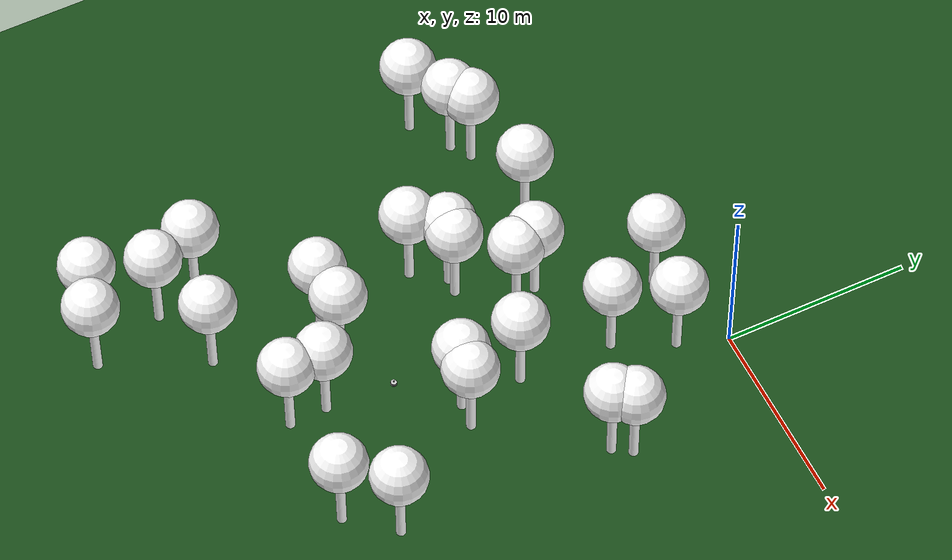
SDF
<sdf version="1.8">
 <world name="forest_world">
  <model name="tree_simple415">
   <static>1</static>
   <link name="link">
    <pose>0 0 0.1 0 -0 0</pose>
    <collision name="collision_trunk">
     <pose>0 0 2 0 -0 0</pose>
     <geometry><cylinder><radius>0.25</radius><length>4</length></cylinder></geometry>
    </collision>
    <collision name="collision_treetop">
     <pose>0 0 5.2 0 -0 0</pose>
     <geometry><sphere><radius>1.5</radius></sphere></geometry>
    </collision>
    <visual name="trunk">
     <pose>0 0 2 0 -0 0</pose>
     <geometry><cylinder><radius>0.25</radius><length>4</length></cylinder></geometry>
     <material>
      <ambient>0.5 0.5 0.5 1</ambient>
      <diffuse>1.0 1.0 1.0 1</diffuse>
      <specular>0.0 0.0 0.0 1</specular>
      <pbr>
       <metal>
        <albedo_map>../worlds/textures/tree_simple_trunk.jpg</albedo_map>
        <metalness>0.0</metalness>
        <roughness>0.8</roughness>
       </metal>
      </pbr>
     </material>
    </visual>
    <visual name="treetop">
     <pose>0 0 5.2 0 -0 0</pose>
     <geometry><sphere><radius>1.5</radius></sphere></geometry>
     <material>
      <ambient>0.5 0.5 0.5 1</ambient>
      <diffuse>1.0 1.0 1.0 1</diffuse>
      <specular>0.0 0.0 0.0 1</specular>
      <pbr>
       <metal>
        <albedo_map>../worlds/textures/tree_simple_treetop.jpg</albedo_map>
        <metalness>0.0</metalness>
        <roughness>0.9</roughness>
       </metal>
      </pbr>
     </material>
    </visual>
   </link>
   <pose>-11.6355979465 -5.8252534874 0 0 -0 0</pose>
  </model>
  <model name="tree_simple395">
   <static>1</static>
   <link name="link">
    <pose>0 0 0.1 0 -0 0</pose>
    <collision name="collision_trunk">
     <pose>0 0 2 0 -0 0</pose>
     <geometry><cylinder><radius>0.25</radius><length>4</length></cylinder></geometry>
    </collision>
    <collision name="collision_treetop">
     <pose>0 0 5.2 0 -0 0</pose>
     <geometry><sphere><radius>1.5</radius></sphere></geometry>
    </collision>
    <visual name="trunk">
     <pose>0 0 2 0 -0 0</pose>
     <geometry><cylinder><radius>0.25</radius><length>4</length></cylinder></geometry>
     <material>
      <ambient>0.5 0.5 0.5 1</ambient>
      <diffuse>1.0 1.0 1.0 1</diffuse>
      <specular>0.0 0.0 0.0 1</specular>
      <pbr>
       <metal>
        <albedo_map>../worlds/textures/tree_simple_trunk.jpg</albedo_map>
        <metalness>0.0</metalness>
        <roughness>0.8</roughness>
       </metal>
      </pbr>
     </material>
    </visual>
    <visual name="treetop">
     <pose>0 0 5.2 0 -0 0</pose>
     <geometry><sphere><radius>1.5</radius></sphere></geometry>
     <material>
      <ambient>0.5 0.5 0.5 1</ambient>
      <diffuse>1.0 1.0 1.0 1</diffuse>
      <specular>0.0 0.0 0.0 1</specular>
      <pbr>
       <metal>
        <albedo_map>../worlds/textures/tree_simple_treetop.jpg</albedo_map>
        <metalness>0.0</metalness>
        <roughness>0.9</roughness>
       </metal>
      </pbr>
     </material>
    </visual>
   </link>
   <pose>-14.8909068885 -23.0244241553 0 0 -0 0</pose>
  </model>
  <model name="tree_simple392">
   <static>1</static>
   <link name="link">
    <pose>0 0 0.1 0 -0 0</pose>
    <collision name="collision_trunk">
     <pose>0 0 2 0 -0 0</pose>
     <geometry><cylinder><radius>0.25</radius><length>4</length></cylinder></geometry>
    </collision>
    <collision name="collision_treetop">
     <pose>0 0 5.2 0 -0 0</pose>
     <geometry><sphere><radius>1.5</radius></sphere></geometry>
    </collision>
    <visual name="trunk">
     <pose>0 0 2 0 -0 0</pose>
     <geometry><cylinder><radius>0.25</radius><length>4</length></cylinder></geometry>
     <material>
      <ambient>0.5 0.5 0.5 1</ambient>
      <diffuse>1.0 1.0 1.0 1</diffuse>
      <specular>0.0 0.0 0.0 1</specular>
      <pbr>
       <metal>
        <albedo_map>../worlds/textures/tree_simple_trunk.jpg</albedo_map>
        <metalness>0.0</metalness>
        <roughness>0.8</roughness>
       </metal>
      </pbr>
     </material>
    </visual>
    <visual name="treetop">
     <pose>0 0 5.2 0 -0 0</pose>
     <geometry><sphere><radius>1.5</radius></sphere></geometry>
     <material>
      <ambient>0.5 0.5 0.5 1</ambient>
      <diffuse>1.0 1.0 1.0 1</diffuse>
      <specular>0.0 0.0 0.0 1</specular>
      <pbr>
       <metal>
        <albedo_map>../worlds/textures/tree_simple_treetop.jpg</albedo_map>
        <metalness>0.0</metalness>
        <roughness>0.9</roughness>
       </metal>
      </pbr>
     </material>
    </visual>
   </link>
   <pose>-2.49227665262 -10.6347787598 0 0 -0 0</pose>
  </model>
  <model name="tree_simple386">
   <static>1</static>
   <link name="link">
    <pose>0 0 0.1 0 -0 0</pose>
    <collision name="collision_trunk">
     <pose>0 0 2 0 -0 0</pose>
     <geometry><cylinder><radius>0.25</radius><length>4</length></cylinder></geometry>
    </collision>
    <collision name="collision_treetop">
     <pose>0 0 5.2 0 -0 0</pose>
     <geometry><sphere><radius>1.5</radius></sphere></geometry>
    </collision>
    <visual name="trunk">
     <pose>0 0 2 0 -0 0</pose>
     <geometry><cylinder><radius>0.25</radius><length>4</length></cylinder></geometry>
     <material>
      <ambient>0.5 0.5 0.5 1</ambient>
      <diffuse>1.0 1.0 1.0 1</diffuse>
      <specular>0.0 0.0 0.0 1</specular>
      <pbr>
       <metal>
        <albedo_map>../worlds/textures/tree_simple_trunk.jpg</albedo_map>
        <metalness>0.0</metalness>
        <roughness>0.8</roughness>
       </metal>
      </pbr>
     </material>
    </visual>
    <visual name="treetop">
     <pose>0 0 5.2 0 -0 0</pose>
     <geometry><sphere><radius>1.5</radius></sphere></geometry>
     <material>
      <ambient>0.5 0.5 0.5 1</ambient>
      <diffuse>1.0 1.0 1.0 1</diffuse>
      <specular>0.0 0.0 0.0 1</specular>
      <pbr>
       <metal>
        <albedo_map>../worlds/textures/tree_simple_treetop.jpg</albedo_map>
        <metalness>0.0</metalness>
        <roughness>0.9</roughness>
       </metal>
      </pbr>
     </material>
    </visual>
   </link>
   <pose>-19.2490777258 -8.77456979873 0 0 -0 0</pose>
  </model>
  <model name="tree_simple371">
   <static>1</static>
   <link name="link">
    <pose>0 0 0.1 0 -0 0</pose>
    <collision name="collision_trunk">
     <pose>0 0 2 0 -0 0</pose>
     <geometry><cylinder><radius>0.25</radius><length>4</length></cylinder></geometry>
    </collision>
    <collision name="collision_treetop">
     <pose>0 0 5.2 0 -0 0</pose>
     <geometry><sphere><radius>1.5</radius></sphere></geometry>
    </collision>
    <visual name="trunk">
     <pose>0 0 2 0 -0 0</pose>
     <geometry><cylinder><radius>0.25</radius><length>4</length></cylinder></geometry>
     <material>
      <ambient>0.5 0.5 0.5 1</ambient>
      <diffuse>1.0 1.0 1.0 1</diffuse>
      <specular>0.0 0.0 0.0 1</specular>
      <pbr>
       <metal>
        <albedo_map>../worlds/textures/tree_simple_trunk.jpg</albedo_map>
        <metalness>0.0</metalness>
        <roughness>0.8</roughness>
       </metal>
      </pbr>
     </material>
    </visual>
    <visual name="treetop">
     <pose>0 0 5.2 0 -0 0</pose>
     <geometry><sphere><radius>1.5</radius></sphere></geometry>
     <material>
      <ambient>0.5 0.5 0.5 1</ambient>
      <diffuse>1.0 1.0 1.0 1</diffuse>
      <specular>0.0 0.0 0.0 1</specular>
      <pbr>
       <metal>
        <albedo_map>../worlds/textures/tree_simple_treetop.jpg</albedo_map>
        <metalness>0.0</metalness>
        <roughness>0.9</roughness>
       </metal>
      </pbr>
     </material>
    </visual>
   </link>
   <pose>-15.0952400949 -28.608477139 0 0 -0 0</pose>
  </model>
  <model name="tree_simple364">
   <static>1</static>
   <link name="link">
    <pose>0 0 0.1 0 -0 0</pose>
    <collision name="collision_trunk">
     <pose>0 0 2 0 -0 0</pose>
     <geometry><cylinder><radius>0.25</radius><length>4</length></cylinder></geometry>
    </collision>
    <collision name="collision_treetop">
     <pose>0 0 5.2 0 -0 0</pose>
     <geometry><sphere><radius>1.5</radius></sphere></geometry>
    </collision>
    <visual name="trunk">
     <pose>0 0 2 0 -0 0</pose>
     <geometry><cylinder><radius>0.25</radius><length>4</length></cylinder></geometry>
     <material>
      <ambient>0.5 0.5 0.5 1</ambient>
      <diffuse>1.0 1.0 1.0 1</diffuse>
      <specular>0.0 0.0 0.0 1</specular>
      <pbr>
       <metal>
        <albedo_map>../worlds/textures/tree_simple_trunk.jpg</albedo_map>
        <metalness>0.0</metalness>
        <roughness>0.8</roughness>
       </metal>
      </pbr>
     </material>
    </visual>
    <visual name="treetop">
     <pose>0 0 5.2 0 -0 0</pose>
     <geometry><sphere><radius>1.5</radius></sphere></geometry>
     <material>
      <ambient>0.5 0.5 0.5 1</ambient>
      <diffuse>1.0 1.0 1.0 1</diffuse>
      <specular>0.0 0.0 0.0 1</specular>
      <pbr>
       <metal>
        <albedo_map>../worlds/textures/tree_simple_treetop.jpg</albedo_map>
        <metalness>0.0</metalness>
        <roughness>0.9</roughness>
       </metal>
      </pbr>
     </material>
    </visual>
   </link>
   <pose>-5.23612591395 -20.1562951187 0 0 -0 0</pose>
  </model>
  <model name="tree_simple347">
   <static>1</static>
   <link name="link">
    <pose>0 0 0.1 0 -0 0</pose>
    <collision name="collision_trunk">
     <pose>0 0 2 0 -0 0</pose>
     <geometry><cylinder><radius>0.25</radius><length>4</length></cylinder></geometry>
    </collision>
    <collision name="collision_treetop">
     <pose>0 0 5.2 0 -0 0</pose>
     <geometry><sphere><radius>1.5</radius></sphere></geometry>
    </collision>
    <visual name="trunk">
     <pose>0 0 2 0 -0 0</pose>
     <geometry><cylinder><radius>0.25</radius><length>4</length></cylinder></geometry>
     <material>
      <ambient>0.5 0.5 0.5 1</ambient>
      <diffuse>1.0 1.0 1.0 1</diffuse>
      <specular>0.0 0.0 0.0 1</specular>
      <pbr>
       <metal>
        <albedo_map>../worlds/textures/tree_simple_trunk.jpg</albedo_map>
        <metalness>0.0</metalness>
        <roughness>0.8</roughness>
       </metal>
      </pbr>
     </material>
    </visual>
    <visual name="treetop">
     <pose>0 0 5.2 0 -0 0</pose>
     <geometry><sphere><radius>1.5</radius></sphere></geometry>
     <material>
      <ambient>0.5 0.5 0.5 1</ambient>
      <diffuse>1.0 1.0 1.0 1</diffuse>
      <specular>0.0 0.0 0.0 1</specular>
      <pbr>
       <metal>
        <albedo_map>../worlds/textures/tree_simple_treetop.jpg</albedo_map>
        <metalness>0.0</metalness>
        <roughness>0.9</roughness>
       </metal>
      </pbr>
     </material>
    </visual>
   </link>
   <pose>-10.2981062424 -24.1175281228 0 0 -0 0</pose>
  </model>
  <model name="tree_simple322">
   <static>1</static>
   <link name="link">
    <pose>0 0 0.1 0 -0 0</pose>
    <collision name="collision_trunk">
     <pose>0 0 2 0 -0 0</pose>
     <geometry><cylinder><radius>0.25</radius><length>4</length></cylinder></geometry>
    </collision>
    <collision name="collision_treetop">
     <pose>0 0 5.2 0 -0 0</pose>
     <geometry><sphere><radius>1.5</radius></sphere></geometry>
    </collision>
    <visual name="trunk">
     <pose>0 0 2 0 -0 0</pose>
     <geometry><cylinder><radius>0.25</radius><length>4</length></cylinder></geometry>
     <material>
      <ambient>0.5 0.5 0.5 1</ambient>
      <diffuse>1.0 1.0 1.0 1</diffuse>
      <specular>0.0 0.0 0.0 1</specular>
      <pbr>
       <metal>
        <albedo_map>../worlds/textures/tree_simple_trunk.jpg</albedo_map>
        <metalness>0.0</metalness>
        <roughness>0.8</roughness>
       </metal>
      </pbr>
     </material>
    </visual>
    <visual name="treetop">
     <pose>0 0 5.2 0 -0 0</pose>
     <geometry><sphere><radius>1.5</radius></sphere></geometry>
     <material>
      <ambient>0.5 0.5 0.5 1</ambient>
      <diffuse>1.0 1.0 1.0 1</diffuse>
      <specular>0.0 0.0 0.0 1</specular>
      <pbr>
       <metal>
        <albedo_map>../worlds/textures/tree_simple_treetop.jpg</albedo_map>
        <metalness>0.0</metalness>
        <roughness>0.9</roughness>
       </metal>
      </pbr>
     </material>
    </visual>
   </link>
   <pose>-10.7837387112 -12.8598856653 0 0 -0 0</pose>
  </model>
  <model name="tree_simple317">
   <static>1</static>
   <link name="link">
    <pose>0 0 0.1 0 -0 0</pose>
    <collision name="collision_trunk">
     <pose>0 0 2 0 -0 0</pose>
     <geometry><cylinder><radius>0.25</radius><length>4</length></cylinder></geometry>
    </collision>
    <collision name="collision_treetop">
     <pose>0 0 5.2 0 -0 0</pose>
     <geometry><sphere><radius>1.5</radius></sphere></geometry>
    </collision>
    <visual name="trunk">
     <pose>0 0 2 0 -0 0</pose>
     <geometry><cylinder><radius>0.25</radius><length>4</length></cylinder></geometry>
     <material>
      <ambient>0.5 0.5 0.5 1</ambient>
      <diffuse>1.0 1.0 1.0 1</diffuse>
      <specular>0.0 0.0 0.0 1</specular>
      <pbr>
       <metal>
        <albedo_map>../worlds/textures/tree_simple_trunk.jpg</albedo_map>
        <metalness>0.0</metalness>
        <roughness>0.8</roughness>
       </metal>
      </pbr>
     </material>
    </visual>
    <visual name="treetop">
     <pose>0 0 5.2 0 -0 0</pose>
     <geometry><sphere><radius>1.5</radius></sphere></geometry>
     <material>
      <ambient>0.5 0.5 0.5 1</ambient>
      <diffuse>1.0 1.0 1.0 1</diffuse>
      <specular>0.0 0.0 0.0 1</specular>
      <pbr>
       <metal>
        <albedo_map>../worlds/textures/tree_simple_treetop.jpg</albedo_map>
        <metalness>0.0</metalness>
        <roughness>0.9</roughness>
       </metal>
      </pbr>
     </material>
    </visual>
   </link>
   <pose>1.01183279708 -22.2370296953 0 0 -0 0</pose>
  </model>
  <model name="tree_simple303">
   <static>1</static>
   <link name="link">
    <pose>0 0 0.1 0 -0 0</pose>
    <collision name="collision_trunk">
     <pose>0 0 2 0 -0 0</pose>
     <geometry><cylinder><radius>0.25</radius><length>4</length></cylinder></geometry>
    </collision>
    <collision name="collision_treetop">
     <pose>0 0 5.2 0 -0 0</pose>
     <geometry><sphere><radius>1.5</radius></sphere></geometry>
    </collision>
    <visual name="trunk">
     <pose>0 0 2 0 -0 0</pose>
     <geometry><cylinder><radius>0.25</radius><length>4</length></cylinder></geometry>
     <material>
      <ambient>0.5 0.5 0.5 1</ambient>
      <diffuse>1.0 1.0 1.0 1</diffuse>
      <specular>0.0 0.0 0.0 1</specular>
      <pbr>
       <metal>
        <albedo_map>../worlds/textures/tree_simple_trunk.jpg</albedo_map>
        <metalness>0.0</metalness>
        <roughness>0.8</roughness>
       </metal>
      </pbr>
     </material>
    </visual>
    <visual name="treetop">
     <pose>0 0 5.2 0 -0 0</pose>
     <geometry><sphere><radius>1.5</radius></sphere></geometry>
     <material>
      <ambient>0.5 0.5 0.5 1</ambient>
      <diffuse>1.0 1.0 1.0 1</diffuse>
      <specular>0.0 0.0 0.0 1</specular>
      <pbr>
       <metal>
        <albedo_map>../worlds/textures/tree_simple_treetop.jpg</albedo_map>
        <metalness>0.0</metalness>
        <roughness>0.9</roughness>
       </metal>
      </pbr>
     </material>
    </visual>
   </link>
   <pose>-9.56094886719 -11.2139048457 0 0 -0 0</pose>
  </model>
  <model name="tree_simple268">
   <static>1</static>
   <link name="link">
    <pose>0 0 0.1 0 -0 0</pose>
    <collision name="collision_trunk">
     <pose>0 0 2 0 -0 0</pose>
     <geometry><cylinder><radius>0.25</radius><length>4</length></cylinder></geometry>
    </collision>
    <collision name="collision_treetop">
     <pose>0 0 5.2 0 -0 0</pose>
     <geometry><sphere><radius>1.5</radius></sphere></geometry>
    </collision>
    <visual name="trunk">
     <pose>0 0 2 0 -0 0</pose>
     <geometry><cylinder><radius>0.25</radius><length>4</length></cylinder></geometry>
     <material>
      <ambient>0.5 0.5 0.5 1</ambient>
      <diffuse>1.0 1.0 1.0 1</diffuse>
      <specular>0.0 0.0 0.0 1</specular>
      <pbr>
       <metal>
        <albedo_map>../worlds/textures/tree_simple_trunk.jpg</albedo_map>
        <metalness>0.0</metalness>
        <roughness>0.8</roughness>
       </metal>
      </pbr>
     </material>
    </visual>
    <visual name="treetop">
     <pose>0 0 5.2 0 -0 0</pose>
     <geometry><sphere><radius>1.5</radius></sphere></geometry>
     <material>
      <ambient>0.5 0.5 0.5 1</ambient>
      <diffuse>1.0 1.0 1.0 1</diffuse>
      <specular>0.0 0.0 0.0 1</specular>
      <pbr>
       <metal>
        <albedo_map>../worlds/textures/tree_simple_treetop.jpg</albedo_map>
        <metalness>0.0</metalness>
        <roughness>0.9</roughness>
       </metal>
      </pbr>
     </material>
    </visual>
   </link>
   <pose>-9.9717965144 -18.2645258901 0 0 -0 0</pose>
  </model>
  <model name="tree_simple253">
   <static>1</static>
   <link name="link">
    <pose>0 0 0.1 0 -0 0</pose>
    <collision name="collision_trunk">
     <pose>0 0 2 0 -0 0</pose>
     <geometry><cylinder><radius>0.25</radius><length>4</length></cylinder></geometry>
    </collision>
    <collision name="collision_treetop">
     <pose>0 0 5.2 0 -0 0</pose>
     <geometry><sphere><radius>1.5</radius></sphere></geometry>
    </collision>
    <visual name="trunk">
     <pose>0 0 2 0 -0 0</pose>
     <geometry><cylinder><radius>0.25</radius><length>4</length></cylinder></geometry>
     <material>
      <ambient>0.5 0.5 0.5 1</ambient>
      <diffuse>1.0 1.0 1.0 1</diffuse>
      <specular>0.0 0.0 0.0 1</specular>
      <pbr>
       <metal>
        <albedo_map>../worlds/textures/tree_simple_trunk.jpg</albedo_map>
        <metalness>0.0</metalness>
        <roughness>0.8</roughness>
       </metal>
      </pbr>
     </material>
    </visual>
    <visual name="treetop">
     <pose>0 0 5.2 0 -0 0</pose>
     <geometry><sphere><radius>1.5</radius></sphere></geometry>
     <material>
      <ambient>0.5 0.5 0.5 1</ambient>
      <diffuse>1.0 1.0 1.0 1</diffuse>
      <specular>0.0 0.0 0.0 1</specular>
      <pbr>
       <metal>
        <albedo_map>../worlds/textures/tree_simple_treetop.jpg</albedo_map>
        <metalness>0.0</metalness>
        <roughness>0.9</roughness>
       </metal>
      </pbr>
     </material>
    </visual>
   </link>
   <pose>-6.71887912458 -8.7537434381 0 0 -0 0</pose>
  </model>
  <model name="tree_simple234">
   <static>1</static>
   <link name="link">
    <pose>0 0 0.1 0 -0 0</pose>
    <collision name="collision_trunk">
     <pose>0 0 2 0 -0 0</pose>
     <geometry><cylinder><radius>0.25</radius><length>4</length></cylinder></geometry>
    </collision>
    <collision name="collision_treetop">
     <pose>0 0 5.2 0 -0 0</pose>
     <geometry><sphere><radius>1.5</radius></sphere></geometry>
    </collision>
    <visual name="trunk">
     <pose>0 0 2 0 -0 0</pose>
     <geometry><cylinder><radius>0.25</radius><length>4</length></cylinder></geometry>
     <material>
      <ambient>0.5 0.5 0.5 1</ambient>
      <diffuse>1.0 1.0 1.0 1</diffuse>
      <specular>0.0 0.0 0.0 1</specular>
      <pbr>
       <metal>
        <albedo_map>../worlds/textures/tree_simple_trunk.jpg</albedo_map>
        <metalness>0.0</metalness>
        <roughness>0.8</roughness>
       </metal>
      </pbr>
     </material>
    </visual>
    <visual name="treetop">
     <pose>0 0 5.2 0 -0 0</pose>
     <geometry><sphere><radius>1.5</radius></sphere></geometry>
     <material>
      <ambient>0.5 0.5 0.5 1</ambient>
      <diffuse>1.0 1.0 1.0 1</diffuse>
      <specular>0.0 0.0 0.0 1</specular>
      <pbr>
       <metal>
        <albedo_map>../worlds/textures/tree_simple_treetop.jpg</albedo_map>
        <metalness>0.0</metalness>
        <roughness>0.9</roughness>
       </metal>
      </pbr>
     </material>
    </visual>
   </link>
   <pose>-7.13671903639 -7.51188908491 0 0 -0 0</pose>
  </model>
  <model name="tree_simple222">
   <static>1</static>
   <link name="link">
    <pose>0 0 0.1 0 -0 0</pose>
    <collision name="collision_trunk">
     <pose>0 0 2 0 -0 0</pose>
     <geometry><cylinder><radius>0.25</radius><length>4</length></cylinder></geometry>
    </collision>
    <collision name="collision_treetop">
     <pose>0 0 5.2 0 -0 0</pose>
     <geometry><sphere><radius>1.5</radius></sphere></geometry>
    </collision>
    <visual name="trunk">
     <pose>0 0 2 0 -0 0</pose>
     <geometry><cylinder><radius>0.25</radius><length>4</length></cylinder></geometry>
     <material>
      <ambient>0.5 0.5 0.5 1</ambient>
      <diffuse>1.0 1.0 1.0 1</diffuse>
      <specular>0.0 0.0 0.0 1</specular>
      <pbr>
       <metal>
        <albedo_map>../worlds/textures/tree_simple_trunk.jpg</albedo_map>
        <metalness>0.0</metalness>
        <roughness>0.8</roughness>
       </metal>
      </pbr>
     </material>
    </visual>
    <visual name="treetop">
     <pose>0 0 5.2 0 -0 0</pose>
     <geometry><sphere><radius>1.5</radius></sphere></geometry>
     <material>
      <ambient>0.5 0.5 0.5 1</ambient>
      <diffuse>1.0 1.0 1.0 1</diffuse>
      <specular>0.0 0.0 0.0 1</specular>
      <pbr>
       <metal>
        <albedo_map>../worlds/textures/tree_simple_treetop.jpg</albedo_map>
        <metalness>0.0</metalness>
        <roughness>0.9</roughness>
       </metal>
      </pbr>
     </material>
    </visual>
   </link>
   <pose>3.92504774623 -7.51224141252 0 0 -0 0</pose>
  </model>
  <model name="tree_simple201">
   <static>1</static>
   <link name="link">
    <pose>0 0 0.1 0 -0 0</pose>
    <collision name="collision_trunk">
     <pose>0 0 2 0 -0 0</pose>
     <geometry><cylinder><radius>0.25</radius><length>4</length></cylinder></geometry>
    </collision>
    <collision name="collision_treetop">
     <pose>0 0 5.2 0 -0 0</pose>
     <geometry><sphere><radius>1.5</radius></sphere></geometry>
    </collision>
    <visual name="trunk">
     <pose>0 0 2 0 -0 0</pose>
     <geometry><cylinder><radius>0.25</radius><length>4</length></cylinder></geometry>
     <material>
      <ambient>0.5 0.5 0.5 1</ambient>
      <diffuse>1.0 1.0 1.0 1</diffuse>
      <specular>0.0 0.0 0.0 1</specular>
      <pbr>
       <metal>
        <albedo_map>../worlds/textures/tree_simple_trunk.jpg</albedo_map>
        <metalness>0.0</metalness>
        <roughness>0.8</roughness>
       </metal>
      </pbr>
     </material>
    </visual>
    <visual name="treetop">
     <pose>0 0 5.2 0 -0 0</pose>
     <geometry><sphere><radius>1.5</radius></sphere></geometry>
     <material>
      <ambient>0.5 0.5 0.5 1</ambient>
      <diffuse>1.0 1.0 1.0 1</diffuse>
      <specular>0.0 0.0 0.0 1</specular>
      <pbr>
       <metal>
        <albedo_map>../worlds/textures/tree_simple_treetop.jpg</albedo_map>
        <metalness>0.0</metalness>
        <roughness>0.9</roughness>
       </metal>
      </pbr>
     </material>
    </visual>
   </link>
   <pose>-16.1062713361 -6.72563548396 0 0 -0 0</pose>
  </model>
  <model name="tree_simple195">
   <static>1</static>
   <link name="link">
    <pose>0 0 0.1 0 -0 0</pose>
    <collision name="collision_trunk">
     <pose>0 0 2 0 -0 0</pose>
     <geometry><cylinder><radius>0.25</radius><length>4</length></cylinder></geometry>
    </collision>
    <collision name="collision_treetop">
     <pose>0 0 5.2 0 -0 0</pose>
     <geometry><sphere><radius>1.5</radius></sphere></geometry>
    </collision>
    <visual name="trunk">
     <pose>0 0 2 0 -0 0</pose>
     <geometry><cylinder><radius>0.25</radius><length>4</length></cylinder></geometry>
     <material>
      <ambient>0.5 0.5 0.5 1</ambient>
      <diffuse>1.0 1.0 1.0 1</diffuse>
      <specular>0.0 0.0 0.0 1</specular>
      <pbr>
       <metal>
        <albedo_map>../worlds/textures/tree_simple_trunk.jpg</albedo_map>
        <metalness>0.0</metalness>
        <roughness>0.8</roughness>
       </metal>
      </pbr>
     </material>
    </visual>
    <visual name="treetop">
     <pose>0 0 5.2 0 -0 0</pose>
     <geometry><sphere><radius>1.5</radius></sphere></geometry>
     <material>
      <ambient>0.5 0.5 0.5 1</ambient>
      <diffuse>1.0 1.0 1.0 1</diffuse>
      <specular>0.0 0.0 0.0 1</specular>
      <pbr>
       <metal>
        <albedo_map>../worlds/textures/tree_simple_treetop.jpg</albedo_map>
        <metalness>0.0</metalness>
        <roughness>0.9</roughness>
       </metal>
      </pbr>
     </material>
    </visual>
   </link>
   <pose>2.97634626893 -19.931363898 0 0 -0 0</pose>
  </model>
  <model name="tree_simple155">
   <static>1</static>
   <link name="link">
    <pose>0 0 0.1 0 -0 0</pose>
    <collision name="collision_trunk">
     <pose>0 0 2 0 -0 0</pose>
     <geometry><cylinder><radius>0.25</radius><length>4</length></cylinder></geometry>
    </collision>
    <collision name="collision_treetop">
     <pose>0 0 5.2 0 -0 0</pose>
     <geometry><sphere><radius>1.5</radius></sphere></geometry>
    </collision>
    <visual name="trunk">
     <pose>0 0 2 0 -0 0</pose>
     <geometry><cylinder><radius>0.25</radius><length>4</length></cylinder></geometry>
     <material>
      <ambient>0.5 0.5 0.5 1</ambient>
      <diffuse>1.0 1.0 1.0 1</diffuse>
      <specular>0.0 0.0 0.0 1</specular>
      <pbr>
       <metal>
        <albedo_map>../worlds/textures/tree_simple_trunk.jpg</albedo_map>
        <metalness>0.0</metalness>
        <roughness>0.8</roughness>
       </metal>
      </pbr>
     </material>
    </visual>
    <visual name="treetop">
     <pose>0 0 5.2 0 -0 0</pose>
     <geometry><sphere><radius>1.5</radius></sphere></geometry>
     <material>
      <ambient>0.5 0.5 0.5 1</ambient>
      <diffuse>1.0 1.0 1.0 1</diffuse>
      <specular>0.0 0.0 0.0 1</specular>
      <pbr>
       <metal>
        <albedo_map>../worlds/textures/tree_simple_treetop.jpg</albedo_map>
        <metalness>0.0</metalness>
        <roughness>0.9</roughness>
       </metal>
      </pbr>
     </material>
    </visual>
   </link>
   <pose>-2.3717624472 -13.9733365428 0 0 -0 0</pose>
  </model>
  <model name="tree_simple154">
   <static>1</static>
   <link name="link">
    <pose>0 0 0.1 0 -0 0</pose>
    <collision name="collision_trunk">
     <pose>0 0 2 0 -0 0</pose>
     <geometry><cylinder><radius>0.25</radius><length>4</length></cylinder></geometry>
    </collision>
    <collision name="collision_treetop">
     <pose>0 0 5.2 0 -0 0</pose>
     <geometry><sphere><radius>1.5</radius></sphere></geometry>
    </collision>
    <visual name="trunk">
     <pose>0 0 2 0 -0 0</pose>
     <geometry><cylinder><radius>0.25</radius><length>4</length></cylinder></geometry>
     <material>
      <ambient>0.5 0.5 0.5 1</ambient>
      <diffuse>1.0 1.0 1.0 1</diffuse>
      <specular>0.0 0.0 0.0 1</specular>
      <pbr>
       <metal>
        <albedo_map>../worlds/textures/tree_simple_trunk.jpg</albedo_map>
        <metalness>0.0</metalness>
        <roughness>0.8</roughness>
       </metal>
      </pbr>
     </material>
    </visual>
    <visual name="treetop">
     <pose>0 0 5.2 0 -0 0</pose>
     <geometry><sphere><radius>1.5</radius></sphere></geometry>
     <material>
      <ambient>0.5 0.5 0.5 1</ambient>
      <diffuse>1.0 1.0 1.0 1</diffuse>
      <specular>0.0 0.0 0.0 1</specular>
      <pbr>
       <metal>
        <albedo_map>../worlds/textures/tree_simple_treetop.jpg</albedo_map>
        <metalness>0.0</metalness>
        <roughness>0.9</roughness>
       </metal>
      </pbr>
     </material>
    </visual>
   </link>
   <pose>3.295584565 -8.44091810905 0 0 -0 0</pose>
  </model>
  <model name="tree_simple152">
   <static>1</static>
   <link name="link">
    <pose>0 0 0.1 0 -0 0</pose>
    <collision name="collision_trunk">
     <pose>0 0 2 0 -0 0</pose>
     <geometry><cylinder><radius>0.25</radius><length>4</length></cylinder></geometry>
    </collision>
    <collision name="collision_treetop">
     <pose>0 0 5.2 0 -0 0</pose>
     <geometry><sphere><radius>1.5</radius></sphere></geometry>
    </collision>
    <visual name="trunk">
     <pose>0 0 2 0 -0 0</pose>
     <geometry><cylinder><radius>0.25</radius><length>4</length></cylinder></geometry>
     <material>
      <ambient>0.5 0.5 0.5 1</ambient>
      <diffuse>1.0 1.0 1.0 1</diffuse>
      <specular>0.0 0.0 0.0 1</specular>
      <pbr>
       <metal>
        <albedo_map>../worlds/textures/tree_simple_trunk.jpg</albedo_map>
        <metalness>0.0</metalness>
        <roughness>0.8</roughness>
       </metal>
      </pbr>
     </material>
    </visual>
    <visual name="treetop">
     <pose>0 0 5.2 0 -0 0</pose>
     <geometry><sphere><radius>1.5</radius></sphere></geometry>
     <material>
      <ambient>0.5 0.5 0.5 1</ambient>
      <diffuse>1.0 1.0 1.0 1</diffuse>
      <specular>0.0 0.0 0.0 1</specular>
      <pbr>
       <metal>
        <albedo_map>../worlds/textures/tree_simple_treetop.jpg</albedo_map>
        <metalness>0.0</metalness>
        <roughness>0.9</roughness>
       </metal>
      </pbr>
     </material>
    </visual>
   </link>
   <pose>-12.7268570034 -29.4125065477 0 0 -0 0</pose>
  </model>
  <model name="tree_simple140">
   <static>1</static>
   <link name="link">
    <pose>0 0 0.1 0 -0 0</pose>
    <collision name="collision_trunk">
     <pose>0 0 2 0 -0 0</pose>
     <geometry><cylinder><radius>0.25</radius><length>4</length></cylinder></geometry>
    </collision>
    <collision name="collision_treetop">
     <pose>0 0 5.2 0 -0 0</pose>
     <geometry><sphere><radius>1.5</radius></sphere></geometry>
    </collision>
    <visual name="trunk">
     <pose>0 0 2 0 -0 0</pose>
     <geometry><cylinder><radius>0.25</radius><length>4</length></cylinder></geometry>
     <material>
      <ambient>0.5 0.5 0.5 1</ambient>
      <diffuse>1.0 1.0 1.0 1</diffuse>
      <specular>0.0 0.0 0.0 1</specular>
      <pbr>
       <metal>
        <albedo_map>../worlds/textures/tree_simple_trunk.jpg</albedo_map>
        <metalness>0.0</metalness>
        <roughness>0.8</roughness>
       </metal>
      </pbr>
     </material>
    </visual>
    <visual name="treetop">
     <pose>0 0 5.2 0 -0 0</pose>
     <geometry><sphere><radius>1.5</radius></sphere></geometry>
     <material>
      <ambient>0.5 0.5 0.5 1</ambient>
      <diffuse>1.0 1.0 1.0 1</diffuse>
      <specular>0.0 0.0 0.0 1</specular>
      <pbr>
       <metal>
        <albedo_map>../worlds/textures/tree_simple_treetop.jpg</albedo_map>
        <metalness>0.0</metalness>
        <roughness>0.9</roughness>
       </metal>
      </pbr>
     </material>
    </visual>
   </link>
   <pose>-1.08104360216 -14.0922455385 0 0 -0 0</pose>
  </model>
  <model name="tree_simple138">
   <static>1</static>
   <link name="link">
    <pose>0 0 0.1 0 -0 0</pose>
    <collision name="collision_trunk">
     <pose>0 0 2 0 -0 0</pose>
     <geometry><cylinder><radius>0.25</radius><length>4</length></cylinder></geometry>
    </collision>
    <collision name="collision_treetop">
     <pose>0 0 5.2 0 -0 0</pose>
     <geometry><sphere><radius>1.5</radius></sphere></geometry>
    </collision>
    <visual name="trunk">
     <pose>0 0 2 0 -0 0</pose>
     <geometry><cylinder><radius>0.25</radius><length>4</length></cylinder></geometry>
     <material>
      <ambient>0.5 0.5 0.5 1</ambient>
      <diffuse>1.0 1.0 1.0 1</diffuse>
      <specular>0.0 0.0 0.0 1</specular>
      <pbr>
       <metal>
        <albedo_map>../worlds/textures/tree_simple_trunk.jpg</albedo_map>
        <metalness>0.0</metalness>
        <roughness>0.8</roughness>
       </metal>
      </pbr>
     </material>
    </visual>
    <visual name="treetop">
     <pose>0 0 5.2 0 -0 0</pose>
     <geometry><sphere><radius>1.5</radius></sphere></geometry>
     <material>
      <ambient>0.5 0.5 0.5 1</ambient>
      <diffuse>1.0 1.0 1.0 1</diffuse>
      <specular>0.0 0.0 0.0 1</specular>
      <pbr>
       <metal>
        <albedo_map>../worlds/textures/tree_simple_treetop.jpg</albedo_map>
        <metalness>0.0</metalness>
        <roughness>0.9</roughness>
       </metal>
      </pbr>
     </material>
    </visual>
   </link>
   <pose>-8.7404095495 -11.2488158501 0 0 -0 0</pose>
  </model>
  <model name="tree_simple106">
   <static>1</static>
   <link name="link">
    <pose>0 0 0.1 0 -0 0</pose>
    <collision name="collision_trunk">
     <pose>0 0 2 0 -0 0</pose>
     <geometry><cylinder><radius>0.25</radius><length>4</length></cylinder></geometry>
    </collision>
    <collision name="collision_treetop">
     <pose>0 0 5.2 0 -0 0</pose>
     <geometry><sphere><radius>1.5</radius></sphere></geometry>
    </collision>
    <visual name="trunk">
     <pose>0 0 2 0 -0 0</pose>
     <geometry><cylinder><radius>0.25</radius><length>4</length></cylinder></geometry>
     <material>
      <ambient>0.5 0.5 0.5 1</ambient>
      <diffuse>1.0 1.0 1.0 1</diffuse>
      <specular>0.0 0.0 0.0 1</specular>
      <pbr>
       <metal>
        <albedo_map>../worlds/textures/tree_simple_trunk.jpg</albedo_map>
        <metalness>0.0</metalness>
        <roughness>0.8</roughness>
       </metal>
      </pbr>
     </material>
    </visual>
    <visual name="treetop">
     <pose>0 0 5.2 0 -0 0</pose>
     <geometry><sphere><radius>1.5</radius></sphere></geometry>
     <material>
      <ambient>0.5 0.5 0.5 1</ambient>
      <diffuse>1.0 1.0 1.0 1</diffuse>
      <specular>0.0 0.0 0.0 1</specular>
      <pbr>
       <metal>
        <albedo_map>../worlds/textures/tree_simple_treetop.jpg</albedo_map>
        <metalness>0.0</metalness>
        <roughness>0.9</roughness>
       </metal>
      </pbr>
     </material>
    </visual>
   </link>
   <pose>-0.906213194622 -2.57618131058 0 0 -0 0</pose>
  </model>
  <model name="tree_simple89">
   <static>1</static>
   <link name="link">
    <pose>0 0 0.1 0 -0 0</pose>
    <collision name="collision_trunk">
     <pose>0 0 2 0 -0 0</pose>
     <geometry><cylinder><radius>0.25</radius><length>4</length></cylinder></geometry>
    </collision>
    <collision name="collision_treetop">
     <pose>0 0 5.2 0 -0 0</pose>
     <geometry><sphere><radius>1.5</radius></sphere></geometry>
    </collision>
    <visual name="trunk">
     <pose>0 0 2 0 -0 0</pose>
     <geometry><cylinder><radius>0.25</radius><length>4</length></cylinder></geometry>
     <material>
      <ambient>0.5 0.5 0.5 1</ambient>
      <diffuse>1.0 1.0 1.0 1</diffuse>
      <specular>0.0 0.0 0.0 1</specular>
      <pbr>
       <metal>
        <albedo_map>../worlds/textures/tree_simple_trunk.jpg</albedo_map>
        <metalness>0.0</metalness>
        <roughness>0.8</roughness>
       </metal>
      </pbr>
     </material>
    </visual>
    <visual name="treetop">
     <pose>0 0 5.2 0 -0 0</pose>
     <geometry><sphere><radius>1.5</radius></sphere></geometry>
     <material>
      <ambient>0.5 0.5 0.5 1</ambient>
      <diffuse>1.0 1.0 1.0 1</diffuse>
      <specular>0.0 0.0 0.0 1</specular>
      <pbr>
       <metal>
        <albedo_map>../worlds/textures/tree_simple_treetop.jpg</albedo_map>
        <metalness>0.0</metalness>
        <roughness>0.9</roughness>
       </metal>
      </pbr>
     </material>
    </visual>
   </link>
   <pose>-14.0445145291 -25.4354437198 0 0 -0 0</pose>
  </model>
  <model name="tree_simple64">
   <static>1</static>
   <link name="link">
    <pose>0 0 0.1 0 -0 0</pose>
    <collision name="collision_trunk">
     <pose>0 0 2 0 -0 0</pose>
     <geometry><cylinder><radius>0.25</radius><length>4</length></cylinder></geometry>
    </collision>
    <collision name="collision_treetop">
     <pose>0 0 5.2 0 -0 0</pose>
     <geometry><sphere><radius>1.5</radius></sphere></geometry>
    </collision>
    <visual name="trunk">
     <pose>0 0 2 0 -0 0</pose>
     <geometry><cylinder><radius>0.25</radius><length>4</length></cylinder></geometry>
     <material>
      <ambient>0.5 0.5 0.5 1</ambient>
      <diffuse>1.0 1.0 1.0 1</diffuse>
      <specular>0.0 0.0 0.0 1</specular>
      <pbr>
       <metal>
        <albedo_map>../worlds/textures/tree_simple_trunk.jpg</albedo_map>
        <metalness>0.0</metalness>
        <roughness>0.8</roughness>
       </metal>
      </pbr>
     </material>
    </visual>
    <visual name="treetop">
     <pose>0 0 5.2 0 -0 0</pose>
     <geometry><sphere><radius>1.5</radius></sphere></geometry>
     <material>
      <ambient>0.5 0.5 0.5 1</ambient>
      <diffuse>1.0 1.0 1.0 1</diffuse>
      <specular>0.0 0.0 0.0 1</specular>
      <pbr>
       <metal>
        <albedo_map>../worlds/textures/tree_simple_treetop.jpg</albedo_map>
        <metalness>0.0</metalness>
        <roughness>0.9</roughness>
       </metal>
      </pbr>
     </material>
    </visual>
   </link>
   <pose>-5.16461725533 -22.1747780475 0 0 -0 0</pose>
  </model>
  <model name="tree_simple60">
   <static>1</static>
   <link name="link">
    <pose>0 0 0.1 0 -0 0</pose>
    <collision name="collision_trunk">
     <pose>0 0 2 0 -0 0</pose>
     <geometry><cylinder><radius>0.25</radius><length>4</length></cylinder></geometry>
    </collision>
    <collision name="collision_treetop">
     <pose>0 0 5.2 0 -0 0</pose>
     <geometry><sphere><radius>1.5</radius></sphere></geometry>
    </collision>
    <visual name="trunk">
     <pose>0 0 2 0 -0 0</pose>
     <geometry><cylinder><radius>0.25</radius><length>4</length></cylinder></geometry>
     <material>
      <ambient>0.5 0.5 0.5 1</ambient>
      <diffuse>1.0 1.0 1.0 1</diffuse>
      <specular>0.0 0.0 0.0 1</specular>
      <pbr>
       <metal>
        <albedo_map>../worlds/textures/tree_simple_trunk.jpg</albedo_map>
        <metalness>0.0</metalness>
        <roughness>0.8</roughness>
       </metal>
      </pbr>
     </material>
    </visual>
    <visual name="treetop">
     <pose>0 0 5.2 0 -0 0</pose>
     <geometry><sphere><radius>1.5</radius></sphere></geometry>
     <material>
      <ambient>0.5 0.5 0.5 1</ambient>
      <diffuse>1.0 1.0 1.0 1</diffuse>
      <specular>0.0 0.0 0.0 1</specular>
      <pbr>
       <metal>
        <albedo_map>../worlds/textures/tree_simple_treetop.jpg</albedo_map>
        <metalness>0.0</metalness>
        <roughness>0.9</roughness>
       </metal>
      </pbr>
     </material>
    </visual>
   </link>
   <pose>-4.80911013023 -1.85604057601 0 0 -0 0</pose>
  </model>
  <model name="tree_simple37">
   <static>1</static>
   <link name="link">
    <pose>0 0 0.1 0 -0 0</pose>
    <collision name="collision_trunk">
     <pose>0 0 2 0 -0 0</pose>
     <geometry><cylinder><radius>0.25</radius><length>4</length></cylinder></geometry>
    </collision>
    <collision name="collision_treetop">
     <pose>0 0 5.2 0 -0 0</pose>
     <geometry><sphere><radius>1.5</radius></sphere></geometry>
    </collision>
    <visual name="trunk">
     <pose>0 0 2 0 -0 0</pose>
     <geometry><cylinder><radius>0.25</radius><length>4</length></cylinder></geometry>
     <material>
      <ambient>0.5 0.5 0.5 1</ambient>
      <diffuse>1.0 1.0 1.0 1</diffuse>
      <specular>0.0 0.0 0.0 1</specular>
      <pbr>
       <metal>
        <albedo_map>../worlds/textures/tree_simple_trunk.jpg</albedo_map>
        <metalness>0.0</metalness>
        <roughness>0.8</roughness>
       </metal>
      </pbr>
     </material>
    </visual>
    <visual name="treetop">
     <pose>0 0 5.2 0 -0 0</pose>
     <geometry><sphere><radius>1.5</radius></sphere></geometry>
     <material>
      <ambient>0.5 0.5 0.5 1</ambient>
      <diffuse>1.0 1.0 1.0 1</diffuse>
      <specular>0.0 0.0 0.0 1</specular>
      <pbr>
       <metal>
        <albedo_map>../worlds/textures/tree_simple_treetop.jpg</albedo_map>
        <metalness>0.0</metalness>
        <roughness>0.9</roughness>
       </metal>
      </pbr>
     </material>
    </visual>
   </link>
   <pose>-17.1200971999 -7.42377639458 0 0 -0 0</pose>
  </model>
  <model name="tree_simple18">
   <static>1</static>
   <link name="link">
    <pose>0 0 0.1 0 -0 0</pose>
    <collision name="collision_trunk">
     <pose>0 0 2 0 -0 0</pose>
     <geometry><cylinder><radius>0.25</radius><length>4</length></cylinder></geometry>
    </collision>
    <collision name="collision_treetop">
     <pose>0 0 5.2 0 -0 0</pose>
     <geometry><sphere><radius>1.5</radius></sphere></geometry>
    </collision>
    <visual name="trunk">
     <pose>0 0 2 0 -0 0</pose>
     <geometry><cylinder><radius>0.25</radius><length>4</length></cylinder></geometry>
     <material>
      <ambient>0.5 0.5 0.5 1</ambient>
      <diffuse>1.0 1.0 1.0 1</diffuse>
      <specular>0.0 0.0 0.0 1</specular>
      <pbr>
       <metal>
        <albedo_map>../worlds/textures/tree_simple_trunk.jpg</albedo_map>
        <metalness>0.0</metalness>
        <roughness>0.8</roughness>
       </metal>
      </pbr>
     </material>
    </visual>
    <visual name="treetop">
     <pose>0 0 5.2 0 -0 0</pose>
     <geometry><sphere><radius>1.5</radius></sphere></geometry>
     <material>
      <ambient>0.5 0.5 0.5 1</ambient>
      <diffuse>1.0 1.0 1.0 1</diffuse>
      <specular>0.0 0.0 0.0 1</specular>
      <pbr>
       <metal>
        <albedo_map>../worlds/textures/tree_simple_treetop.jpg</albedo_map>
        <metalness>0.0</metalness>
        <roughness>0.9</roughness>
       </metal>
      </pbr>
     </material>
    </visual>
   </link>
   <pose>-7.91294561281 -18.0894598626 0 0 -0 0</pose>
  </model>
  <model name="tree_simple2">
   <static>1</static>
   <link name="link">
    <pose>0 0 0.1 0 -0 0</pose>
    <collision name="collision_trunk">
     <pose>0 0 2 0 -0 0</pose>
     <geometry><cylinder><radius>0.25</radius><length>4</length></cylinder></geometry>
    </collision>
    <collision name="collision_treetop">
     <pose>0 0 5.2 0 -0 0</pose>
     <geometry><sphere><radius>1.5</radius></sphere></geometry>
    </collision>
    <visual name="trunk">
     <pose>0 0 2 0 -0 0</pose>
     <geometry><cylinder><radius>0.25</radius><length>4</length></cylinder></geometry>
     <material>
      <ambient>0.5 0.5 0.5 1</ambient>
      <diffuse>1.0 1.0 1.0 1</diffuse>
      <specular>0.0 0.0 0.0 1</specular>
      <pbr>
       <metal>
        <albedo_map>../worlds/textures/tree_simple_trunk.jpg</albedo_map>
        <metalness>0.0</metalness>
        <roughness>0.8</roughness>
       </metal>
      </pbr>
     </material>
    </visual>
    <visual name="treetop">
     <pose>0 0 5.2 0 -0 0</pose>
     <geometry><sphere><radius>1.5</radius></sphere></geometry>
     <material>
      <ambient>0.5 0.5 0.5 1</ambient>
      <diffuse>1.0 1.0 1.0 1</diffuse>
      <specular>0.0 0.0 0.0 1</specular>
      <pbr>
       <metal>
        <albedo_map>../worlds/textures/tree_simple_treetop.jpg</albedo_map>
        <metalness>0.0</metalness>
        <roughness>0.9</roughness>
       </metal>
      </pbr>
     </material>
    </visual>
   </link>
   <pose>-2.32374702534 -5.59991455471 0 0 -0 0</pose>
  </model>
  <model name="ground_plane">
   <static>true</static>
   <link name="link">
    <collision name="collision">
     <geometry><mesh><uri>../worlds/textures/grass_plane.dae</uri><scale>1 1 1</scale></mesh></geometry>
     <surface><friction><ode><mu>1</mu><mu2>1</mu2></ode></friction></surface>
    </collision>
    <visual name="snow">
     <cast_shadows>false</cast_shadows>
     <geometry><mesh><uri>../worlds/textures/grass_plane.dae</uri><scale>1 1 1</scale></mesh></geometry>
     <material>
      <ambient>0.05 0.2 0.05 1</ambient>
      <diffuse>0.1 0.3 0.1 1</diffuse>
      <specular>0.05 0.05 0.05 1</specular>
     </material>
    </visual>
   </link>
  </model>
  <model name="turtlebot4">
   <pose>-3.05 -17.37 3.5 0 0 0</pose>
   <static>false</static>
   <link name="base_link">
    <inertial>
     <mass>2.5</mass>
     <inertia>
      <ixx>0.019995</ixx>
      <ixy>0.0</ixy>
      <ixz>0.0</ixz>
      <iyy>0.019995</iyy>
      <iyz>0.0</iyz>
      <izz>0.03675</izz>
     </inertia>
    </inertial>
    <visual name="base_visual">
     <geometry><cylinder><radius>0.17</radius><length>0.12</length></cylinder></geometry>
     <material><ambient>0.1 0.1 0.1 1</ambient><diffuse>0.1 0.1 0.1 1</diffuse></material>
    </visual>
    <visual name="top_visual">
     <pose>0 0 0.08 0 0 0</pose>
     <geometry><cylinder><radius>0.15</radius><length>0.04</length></cylinder></geometry>
     <material><ambient>0.8 0.8 0.8 1</ambient><diffuse>0.8 0.8 0.8 1</diffuse></material>
    </visual>
    <collision name="base_collision">
     <geometry><cylinder><radius>0.17</radius><length>0.12</length></cylinder></geometry>
    </collision>
   </link>
   <link name="left_wheel">
    <pose>0 0.115 -0.032 -1.5707 0 0</pose>
    <inertial>
     <mass>0.1</mass>
     <inertia><ixx>0.001</ixx><ixy>0.0</ixy><ixz>0.0</ixz><iyy>0.001</iyy><iyz>0.0</iyz><izz>0.001</izz></inertia>
    </inertial>
    <visual name="visual">
     <geometry><cylinder><radius>0.035</radius><length>0.026</length></cylinder></geometry>
     <material><ambient>0.2 0.2 0.2 1</ambient><diffuse>0.2 0.2 0.2 1</diffuse></material>
    </visual>
    <collision name="collision">
     <geometry><cylinder><radius>0.035</radius><length>0.026</length></cylinder></geometry>
     <surface><friction><ode><mu>1.0</mu><mu2>1.0</mu2></ode></friction></surface>
    </collision>
   </link>
   <link name="right_wheel">
    <pose>0 -0.115 -0.032 -1.5707 0 0</pose>
    <inertial>
     <mass>0.1</mass>
     <inertia><ixx>0.001</ixx><ixy>0.0</ixy><ixz>0.0</ixz><iyy>0.001</iyy><iyz>0.0</iyz><izz>0.001</izz></inertia>
    </inertial>
    <visual name="visual">
     <geometry><cylinder><radius>0.035</radius><length>0.026</length></cylinder></geometry>
     <material><ambient>0.2 0.2 0.2 1</ambient><diffuse>0.2 0.2 0.2 1</diffuse></material>
    </visual>
    <collision name="collision">
     <geometry><cylinder><radius>0.035</radius><length>0.026</length></cylinder></geometry>
     <surface><friction><ode><mu>1.0</mu><mu2>1.0</mu2></ode></friction></surface>
    </collision>
   </link>
   <link name="caster_wheel">
    <pose>0.12 0 -0.055 0 0 0</pose>
    <inertial>
     <mass>0.05</mass>
     <inertia>
      <ixx>0.0001</ixx>
      <ixy>0.0</ixy>
      <ixz>0.0</ixz>
      <iyy>0.0001</iyy>
      <iyz>0.0</iyz>
      <izz>0.0001</izz>
     </inertia>
    </inertial>
    <visual name="visual">
     <geometry><sphere><radius>0.012</radius></sphere></geometry>
     <material><ambient>0.3 0.3 0.3 1</ambient><diffuse>0.3 0.3 0.3 1</diffuse></material>
    </visual>
    <collision name="collision">
     <geometry><sphere><radius>0.012</radius></sphere></geometry>
     <surface><friction><ode><mu>0.1</mu><mu2>0.1</mu2></ode></friction></surface>
    </collision>
   </link>
   <link name="lidar_link">
    <pose>0 0 0.15 0 0 0</pose>
    <inertial>
     <mass>0.1</mass>
     <inertia>
      <ixx>0.0001</ixx>
      <ixy>0.0</ixy>
      <ixz>0.0</ixz>
      <iyy>0.0001</iyy>
      <iyz>0.0</iyz>
      <izz>0.0001</izz>
     </inertia>
    </inertial>
    <visual name="visual">
     <geometry><cylinder><radius>0.04</radius><length>0.05</length></cylinder></geometry>
     <material><ambient>0.1 0.1 0.1 1</ambient><diffuse>0.1 0.1 0.1 1</diffuse></material>
    </visual>
    <collision name="collision">
     <geometry><cylinder><radius>0.04</radius><length>0.05</length></cylinder></geometry>
    </collision>
    <sensor name="lidar" type="gpu_ray">
     <always_on>true</always_on>
     <update_rate>10</update_rate>
     <ray>
      <scan>
       <horizontal>
        <samples>360</samples>
        <resolution>1</resolution>
        <min_angle>-3.14159</min_angle>
        <max_angle>3.14159</max_angle>
       </horizontal>
      </scan>
      <range><min>0.1</min><max>12.0</max><resolution>0.01</resolution></range>
     </ray>
    </sensor>
   </link>
   <link name="camera_link">
    <pose>0.12 0 0.08 0 0 0</pose>
    <inertial>
     <mass>0.05</mass>
     <inertia>
      <ixx>0.0001</ixx>
      <ixy>0.0</ixy>
      <ixz>0.0</ixz>
      <iyy>0.0001</iyy>
      <iyz>0.0</iyz>
      <izz>0.0001</izz>
     </inertia>
    </inertial>
    <visual name="visual">
     <geometry><box><size>0.03 0.05 0.02</size></box></geometry>
     <material><ambient>0.2 0.2 0.8 1</ambient><diffuse>0.2 0.2 0.8 1</diffuse></material>
    </visual>
    <collision name="collision"><geometry><box><size>0.03 0.05 0.02</size></box></geometry></collision>
    <sensor name="camera" type="camera">
     <topic>camera</topic>
     <always_on>true</always_on>
     <update_rate>30</update_rate>
     <camera>
      <horizontal_fov>1.047</horizontal_fov>
      <image><width>640</width><height>480</height><format>R8G8B8</format></image>
      <clip><near>0.1</near><far>100</far></clip>
     </camera>
    </sensor>
   </link>
   <joint name="left_wheel_joint" type="revolute">
    <parent>base_link</parent>
    <child>left_wheel</child>
    <axis><xyz>0 0 1</xyz></axis>
   </joint>
   <joint name="right_wheel_joint" type="revolute">
    <parent>base_link</parent>
    <child>right_wheel</child>
    <axis><xyz>0 0 1</xyz></axis>
   </joint>
   <joint name="caster_wheel_joint" type="ball"><parent>base_link</parent><child>caster_wheel</child></joint>
   <joint name="lidar_joint" type="fixed"><parent>base_link</parent><child>lidar_link</child></joint>
   <joint name="camera_joint" type="fixed"><parent>base_link</parent><child>camera_link</child></joint>
   <plugin filename="libignition-gazebo-diff-drive-system.so" name="ignition::gazebo::systems::DiffDrive">
    <left_joint>left_wheel_joint</left_joint>
    <right_joint>right_wheel_joint</right_joint>
    <wheel_separation>0.23</wheel_separation>
    <wheel_radius>0.035</wheel_radius>
    <odom_publish_frequency>30</odom_publish_frequency>
    <topic>cmd_vel</topic>
    <odom_topic>odom</odom_topic>
    <frame_id>odom</frame_id>
    <child_frame_id>base_link</child_frame_id>
   </plugin>
   <plugin filename="libignition-gazebo-joint-state-publisher-system.so" name="ignition::gazebo::systems::JointStatePublisher"/>
   <plugin filename="libignition-gazebo-pose-publisher-system.so" name="ignition::gazebo::systems::PosePublisher">
    <publish_link_pose>true</publish_link_pose>
    <use_pose_vector_msg>true</use_pose_vector_msg>
    <static_publisher>true</static_publisher>
    <static_update_frequency>1</static_update_frequency>
   </plugin>
  </model>
 </world>
</sdf>
